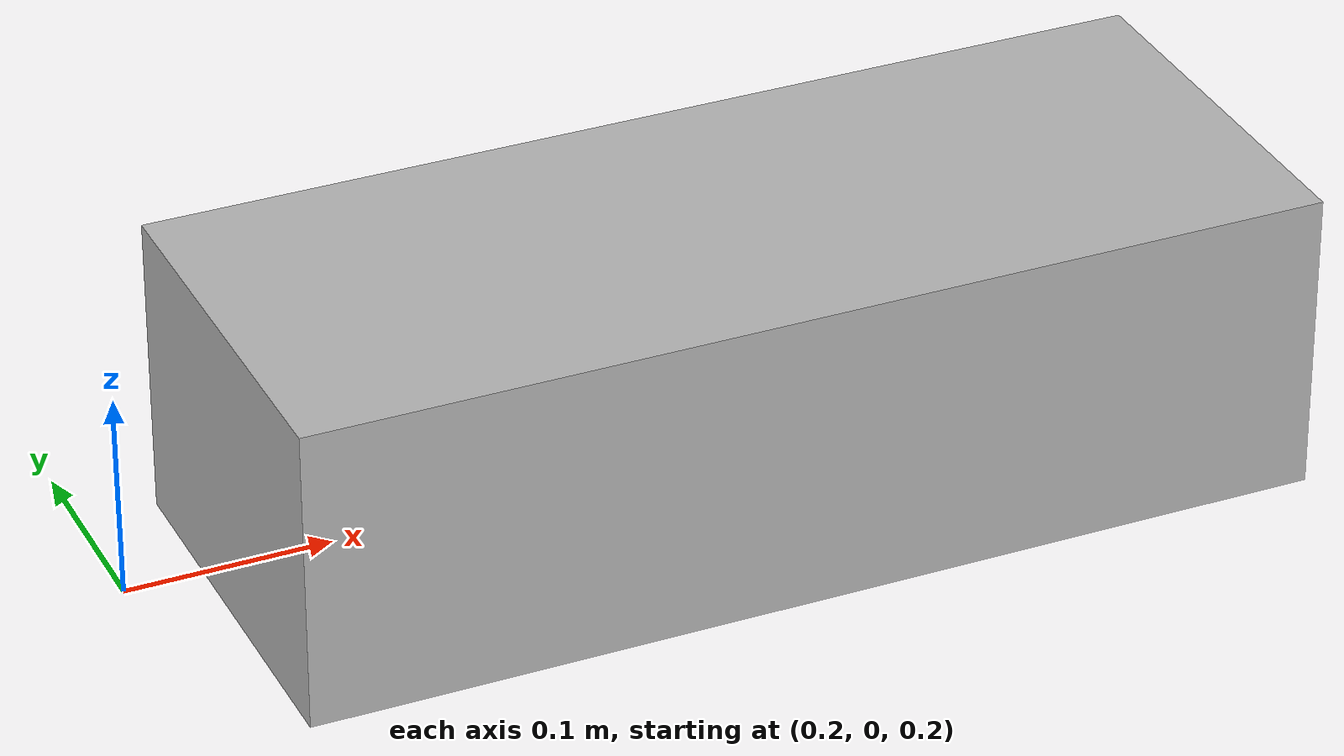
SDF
<?xml version="1.0" ?>
<sdf version="1.4">
  <world name="default">
    <include>
      <uri>model://sun</uri>
    </include>

    <model name="obs1">
      <pose>0.5 0.0 0.25 0 0 0</pose>
      <static>1</static>
      <link name="link">
        <visual name="visual">
          <geometry>
            <box>
              <size>0.5 0.2 0.15 </size>
            </box>
          </geometry>
        </visual>
        <collision name='collision'>
          <laser_retro>0</laser_retro>
          <geometry>
            <box>
              <size>0.55 0.2 0.5</size>
            </box>
          </geometry>
        </collision>
      </link>
    </model>

  </world>
</sdf>
